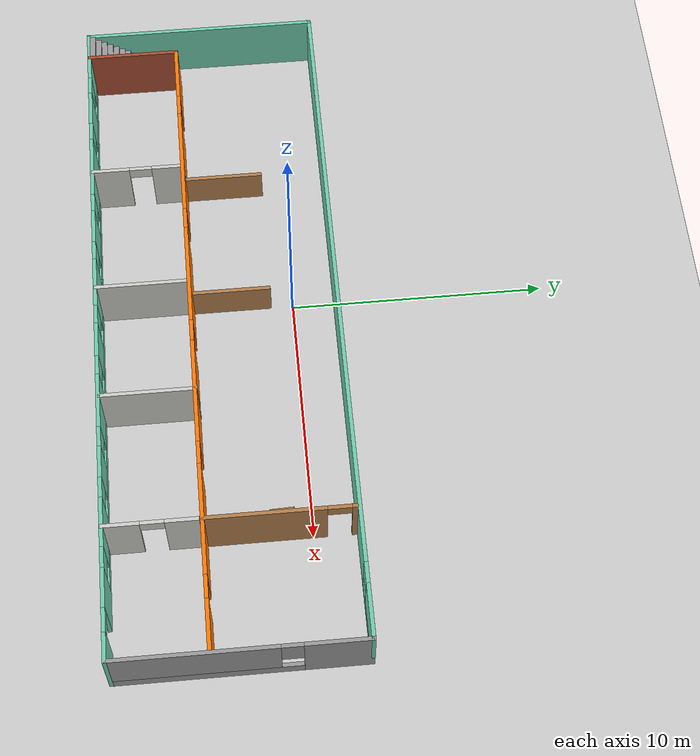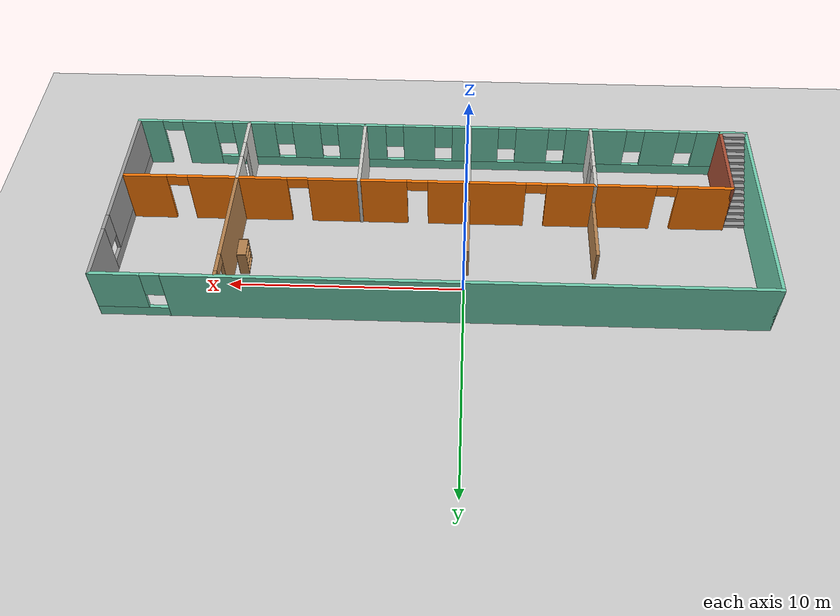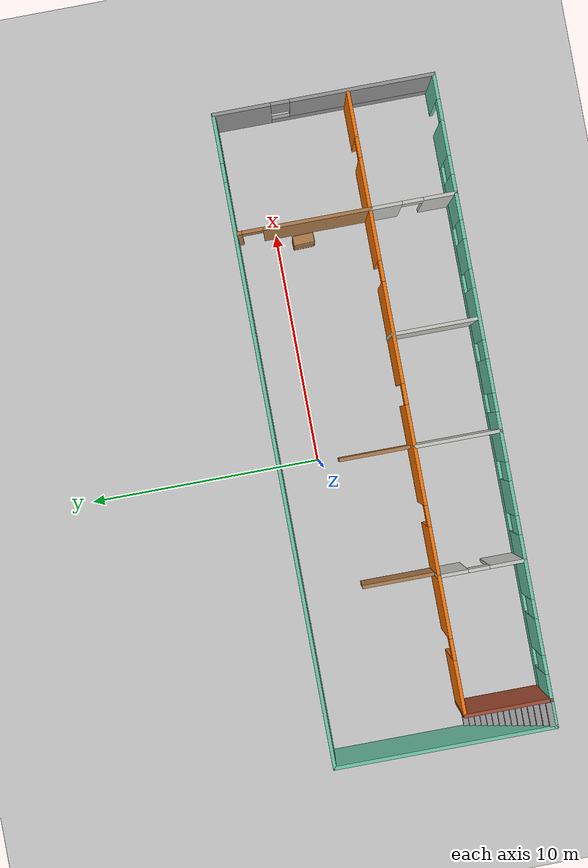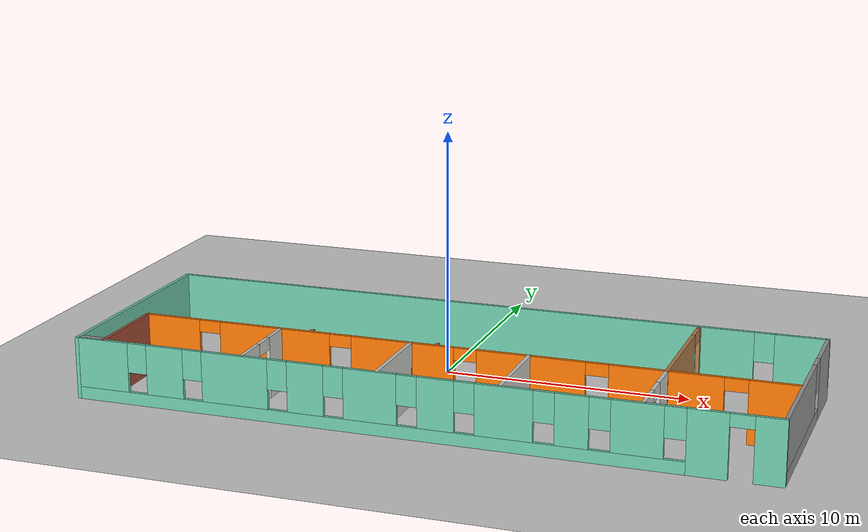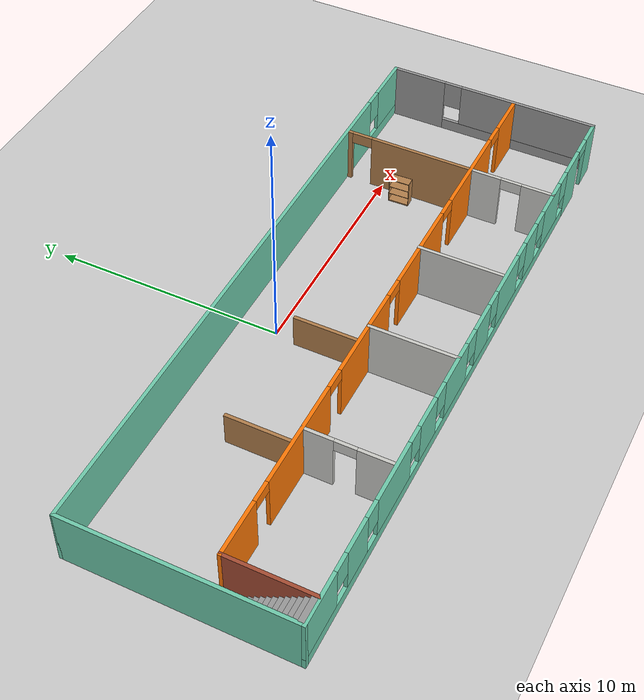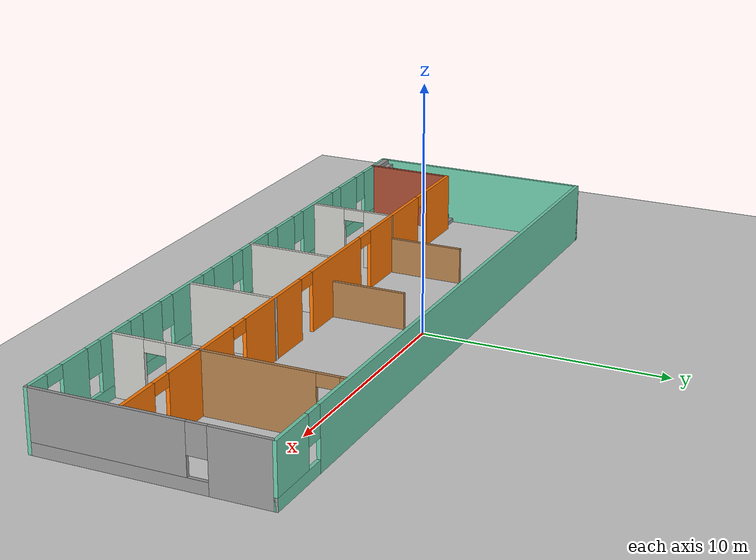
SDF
<sdf version="1.6">
 <world name="default">
  <model name="ground_plane">
   <static>1</static>
   <link name="link">
    <collision name="collision">
     <geometry><plane><normal>0 0 1</normal><size>100 100</size></plane></geometry>
     <surface>
      <contact><collide_bitmask>65535</collide_bitmask></contact>
      <friction><ode><mu>100</mu><mu2>50</mu2></ode></friction>
     </surface>
    </collision>
    <visual name="visual">
     <cast_shadows>0</cast_shadows>
     <geometry><plane><normal>0 0 1</normal><size>100 100</size></plane></geometry>
     <material>
      <script><uri>file://media/materials/scripts/gazebo.material</uri><name>Gazebo/Grey</name></script>
     </material>
    </visual>
   </link>
  </model>
  <model name="bookshelf">
   <static>1</static>
   <link name="link">
    <inertial><mass>1</mass></inertial>
    <collision name="back">
     <pose>0 0.005 0.6 0 -0 0</pose>
     <geometry><box><size>0.9 0.01 1.2</size></box></geometry>
    </collision>
    <visual name="visual1">
     <pose>0 0.005 0.6 0 -0 0</pose>
     <geometry><box><size>0.9 0.01 1.2</size></box></geometry>
     <material>
      <script><uri>file://media/materials/scripts/gazebo.material</uri><name>Gazebo/Wood</name></script>
     </material>
    </visual>
    <collision name="left_side">
     <pose>0.45 -0.195 0.6 0 -0 0</pose>
     <geometry><box><size>0.02 0.4 1.2</size></box></geometry>
    </collision>
    <visual name="visual2">
     <pose>0.45 -0.195 0.6 0 -0 0</pose>
     <geometry><box><size>0.02 0.4 1.2</size></box></geometry>
     <material>
      <script><uri>file://media/materials/scripts/gazebo.material</uri><name>Gazebo/Wood</name></script>
     </material>
    </visual>
    <collision name="right_side">
     <pose>-0.45 -0.195 0.6 0 -0 0</pose>
     <geometry><box><size>0.02 0.4 1.2</size></box></geometry>
    </collision>
    <visual name="visual3">
     <pose>-0.45 -0.195 0.6 0 -0 0</pose>
     <geometry><box><size>0.02 0.4 1.2</size></box></geometry>
     <material>
      <script><uri>file://media/materials/scripts/gazebo.material</uri><name>Gazebo/Wood</name></script>
     </material>
    </visual>
    <collision name="bottom">
     <pose>0 -0.195 0.03 0 -0 0</pose>
     <geometry><box><size>0.88 0.4 0.06</size></box></geometry>
    </collision>
    <visual name="visual4">
     <pose>0 -0.195 0.03 0 -0 0</pose>
     <geometry><box><size>0.88 0.4 0.06</size></box></geometry>
     <material>
      <script><uri>file://media/materials/scripts/gazebo.material</uri><name>Gazebo/Wood</name></script>
     </material>
    </visual>
    <collision name="top">
     <pose>0 -0.195 1.19 0 -0 0</pose>
     <geometry><box><size>0.88 0.4 0.02</size></box></geometry>
    </collision>
    <visual name="visual5">
     <pose>0 -0.195 1.19 0 -0 0</pose>
     <geometry><box><size>0.88 0.4 0.02</size></box></geometry>
     <material>
      <script><uri>file://media/materials/scripts/gazebo.material</uri><name>Gazebo/Wood</name></script>
     </material>
    </visual>
    <collision name="low_shelf">
     <pose>0 -0.195 0.43 0 -0 0</pose>
     <geometry><box><size>0.88 0.4 0.02</size></box></geometry>
    </collision>
    <visual name="visual6">
     <pose>0 -0.195 0.43 0 -0 0</pose>
     <geometry><box><size>0.88 0.4 0.02</size></box></geometry>
     <material>
      <script><uri>file://media/materials/scripts/gazebo.material</uri><name>Gazebo/Wood</name></script>
     </material>
    </visual>
    <collision name="high_shelf">
     <pose>0 -0.195 0.8 0 -0 0</pose>
     <geometry><box><size>0.88 0.4 0.02</size></box></geometry>
    </collision>
    <visual name="visual7">
     <pose>0 -0.195 0.8 0 -0 0</pose>
     <geometry><box><size>0.88 0.4 0.02</size></box></geometry>
     <material>
      <script><uri>file://media/materials/scripts/gazebo.material</uri><name>Gazebo/Wood</name></script>
     </material>
    </visual>
   </link>
   <pose>9.64485 -1.08676 0 0 0 -1.5382</pose>
  </model>
  <model name="Room2">
   <pose>1.20997 -2.96921 0 0 -0 0</pose>
   <link name="Stairs_0">
    <visual name="Stairs_0_Visual_0">
     <pose>-13.2569 -1.25437 0.083333 0 -0 0</pose>
     <geometry><box><size>1 0.233333 0.166667</size></box></geometry>
     <material>
      <script><uri>file://media/materials/scripts/gazebo.material</uri><name>Gazebo/Grey</name></script>
      <ambient>1 1 1 1</ambient>
     </material>
     <meta><layer>0</layer></meta>
    </visual>
    <collision name="Stairs_0_Collision_0">
     <geometry><box><size>1 0.233333 0.166667</size></box></geometry>
     <pose>-13.2569 -1.25437 0.083333 0 -0 0</pose>
    </collision>
    <visual name="Stairs_0_Visual_1">
     <pose>-13.2569 -1.4877 0.25 0 -0 0</pose>
     <geometry><box><size>1 0.233333 0.166667</size></box></geometry>
     <material>
      <script><uri>file://media/materials/scripts/gazebo.material</uri><name>Gazebo/Grey</name></script>
      <ambient>1 1 1 1</ambient>
     </material>
     <meta><layer>0</layer></meta>
    </visual>
    <collision name="Stairs_0_Collision_1">
     <geometry><box><size>1 0.233333 0.166667</size></box></geometry>
     <pose>-13.2569 -1.4877 0.25 0 -0 0</pose>
    </collision>
    <visual name="Stairs_0_Visual_2">
     <pose>-13.2569 -1.72104 0.416667 0 -0 0</pose>
     <geometry><box><size>1 0.233333 0.166667</size></box></geometry>
     <material>
      <script><uri>file://media/materials/scripts/gazebo.material</uri><name>Gazebo/Grey</name></script>
      <ambient>1 1 1 1</ambient>
     </material>
     <meta><layer>0</layer></meta>
    </visual>
    <collision name="Stairs_0_Collision_2">
     <geometry><box><size>1 0.233333 0.166667</size></box></geometry>
     <pose>-13.2569 -1.72104 0.416667 0 -0 0</pose>
    </collision>
    <visual name="Stairs_0_Visual_3">
     <pose>-13.2569 -1.95437 0.583333 0 -0 0</pose>
     <geometry><box><size>1 0.233333 0.166667</size></box></geometry>
     <material>
      <script><uri>file://media/materials/scripts/gazebo.material</uri><name>Gazebo/Grey</name></script>
      <ambient>1 1 1 1</ambient>
     </material>
     <meta><layer>0</layer></meta>
    </visual>
    <collision name="Stairs_0_Collision_3">
     <geometry><box><size>1 0.233333 0.166667</size></box></geometry>
     <pose>-13.2569 -1.95437 0.583333 0 -0 0</pose>
    </collision>
    <visual name="Stairs_0_Visual_4">
     <pose>-13.2569 -2.1877 0.75 0 -0 0</pose>
     <geometry><box><size>1 0.233333 0.166667</size></box></geometry>
     <material>
      <script><uri>file://media/materials/scripts/gazebo.material</uri><name>Gazebo/Grey</name></script>
      <ambient>1 1 1 1</ambient>
     </material>
     <meta><layer>0</layer></meta>
    </visual>
    <collision name="Stairs_0_Collision_4">
     <geometry><box><size>1 0.233333 0.166667</size></box></geometry>
     <pose>-13.2569 -2.1877 0.75 0 -0 0</pose>
    </collision>
    <visual name="Stairs_0_Visual_5">
     <pose>-13.2569 -2.42104 0.916667 0 -0 0</pose>
     <geometry><box><size>1 0.233333 0.166667</size></box></geometry>
     <material>
      <script><uri>file://media/materials/scripts/gazebo.material</uri><name>Gazebo/Grey</name></script>
      <ambient>1 1 1 1</ambient>
     </material>
     <meta><layer>0</layer></meta>
    </visual>
    <collision name="Stairs_0_Collision_5">
     <geometry><box><size>1 0.233333 0.166667</size></box></geometry>
     <pose>-13.2569 -2.42104 0.916667 0 -0 0</pose>
    </collision>
    <visual name="Stairs_0_Visual_6">
     <pose>-13.2569 -2.65437 1.08333 0 -0 0</pose>
     <geometry><box><size>1 0.233333 0.166667</size></box></geometry>
     <material>
      <script><uri>file://media/materials/scripts/gazebo.material</uri><name>Gazebo/Grey</name></script>
      <ambient>1 1 1 1</ambient>
     </material>
     <meta><layer>0</layer></meta>
    </visual>
    <collision name="Stairs_0_Collision_6">
     <geometry><box><size>1 0.233333 0.166667</size></box></geometry>
     <pose>-13.2569 -2.65437 1.08333 0 -0 0</pose>
    </collision>
    <visual name="Stairs_0_Visual_7">
     <pose>-13.2569 -2.8877 1.25 0 -0 0</pose>
     <geometry><box><size>1 0.233333 0.166667</size></box></geometry>
     <material>
      <script><uri>file://media/materials/scripts/gazebo.material</uri><name>Gazebo/Grey</name></script>
      <ambient>1 1 1 1</ambient>
     </material>
     <meta><layer>0</layer></meta>
    </visual>
    <collision name="Stairs_0_Collision_7">
     <geometry><box><size>1 0.233333 0.166667</size></box></geometry>
     <pose>-13.2569 -2.8877 1.25 0 -0 0</pose>
    </collision>
    <visual name="Stairs_0_Visual_8">
     <pose>-13.2569 -3.12104 1.41667 0 -0 0</pose>
     <geometry><box><size>1 0.233333 0.166667</size></box></geometry>
     <material>
      <script><uri>file://media/materials/scripts/gazebo.material</uri><name>Gazebo/Grey</name></script>
      <ambient>1 1 1 1</ambient>
     </material>
     <meta><layer>0</layer></meta>
    </visual>
    <collision name="Stairs_0_Collision_8">
     <geometry><box><size>1 0.233333 0.166667</size></box></geometry>
     <pose>-13.2569 -3.12104 1.41667 0 -0 0</pose>
    </collision>
    <visual name="Stairs_0_Visual_9">
     <pose>-13.2569 -3.35437 1.58333 0 -0 0</pose>
     <geometry><box><size>1 0.233333 0.166667</size></box></geometry>
     <material>
      <script><uri>file://media/materials/scripts/gazebo.material</uri><name>Gazebo/Grey</name></script>
      <ambient>1 1 1 1</ambient>
     </material>
     <meta><layer>0</layer></meta>
    </visual>
    <collision name="Stairs_0_Collision_9">
     <geometry><box><size>1 0.233333 0.166667</size></box></geometry>
     <pose>-13.2569 -3.35437 1.58333 0 -0 0</pose>
    </collision>
    <visual name="Stairs_0_Visual_10">
     <pose>-13.2569 -3.5877 1.75 0 -0 0</pose>
     <geometry><box><size>1 0.233333 0.166667</size></box></geometry>
     <material>
      <script><uri>file://media/materials/scripts/gazebo.material</uri><name>Gazebo/Grey</name></script>
      <ambient>1 1 1 1</ambient>
     </material>
     <meta><layer>0</layer></meta>
    </visual>
    <collision name="Stairs_0_Collision_10">
     <geometry><box><size>1 0.233333 0.166667</size></box></geometry>
     <pose>-13.2569 -3.5877 1.75 0 -0 0</pose>
    </collision>
    <visual name="Stairs_0_Visual_11">
     <pose>-13.2569 -3.82104 1.91667 0 -0 0</pose>
     <geometry><box><size>1 0.233333 0.166667</size></box></geometry>
     <material>
      <script><uri>file://media/materials/scripts/gazebo.material</uri><name>Gazebo/Grey</name></script>
      <ambient>1 1 1 1</ambient>
     </material>
     <meta><layer>0</layer></meta>
    </visual>
    <collision name="Stairs_0_Collision_11">
     <geometry><box><size>1 0.233333 0.166667</size></box></geometry>
     <pose>-13.2569 -3.82104 1.91667 0 -0 0</pose>
    </collision>
    <visual name="Stairs_0_Visual_12">
     <pose>-13.2569 -4.05437 2.08333 0 -0 0</pose>
     <geometry><box><size>1 0.233333 0.166667</size></box></geometry>
     <material>
      <script><uri>file://media/materials/scripts/gazebo.material</uri><name>Gazebo/Grey</name></script>
      <ambient>1 1 1 1</ambient>
     </material>
     <meta><layer>0</layer></meta>
    </visual>
    <collision name="Stairs_0_Collision_12">
     <geometry><box><size>1 0.233333 0.166667</size></box></geometry>
     <pose>-13.2569 -4.05437 2.08333 0 -0 0</pose>
    </collision>
    <visual name="Stairs_0_Visual_13">
     <pose>-13.2569 -4.2877 2.25 0 -0 0</pose>
     <geometry><box><size>1 0.233333 0.166667</size></box></geometry>
     <material>
      <script><uri>file://media/materials/scripts/gazebo.material</uri><name>Gazebo/Grey</name></script>
      <ambient>1 1 1 1</ambient>
     </material>
     <meta><layer>0</layer></meta>
    </visual>
    <collision name="Stairs_0_Collision_13">
     <geometry><box><size>1 0.233333 0.166667</size></box></geometry>
     <pose>-13.2569 -4.2877 2.25 0 -0 0</pose>
    </collision>
    <visual name="Stairs_0_Visual_14">
     <pose>-13.2569 -4.52104 2.41667 0 -0 0</pose>
     <geometry><box><size>1 0.233333 0.166667</size></box></geometry>
     <material>
      <script><uri>file://media/materials/scripts/gazebo.material</uri><name>Gazebo/Grey</name></script>
      <ambient>1 1 1 1</ambient>
     </material>
     <meta><layer>0</layer></meta>
    </visual>
    <collision name="Stairs_0_Collision_14">
     <geometry><box><size>1 0.233333 0.166667</size></box></geometry>
     <pose>-13.2569 -4.52104 2.41667 0 -0 0</pose>
    </collision>
   </link>
   <link name="Wall_1">
    <pose>0 4.675 0 0 -0 0</pose>
    <visual name="Wall_1_Visual_0">
     <pose>-1.46652 0 1.25 0 -0 0</pose>
     <geometry><box><size>24.817 0.15 2.5</size></box></geometry>
     <material>
      <script><uri>file://media/materials/scripts/gazebo.material</uri><name>Gazebo/Grey</name></script>
      <ambient>0.435294 0.796078 0.67451 1</ambient>
     </material>
     <meta><layer>0</layer></meta>
    </visual>
    <collision name="Wall_1_Collision_0">
     <geometry><box><size>24.817 0.15 2.5</size></box></geometry>
     <pose>-1.46652 0 1.25 0 -0 0</pose>
    </collision>
    <visual name="Wall_1_Visual_1">
     <pose>12.4085 0 0.25 0 -0 0</pose>
     <geometry><box><size>2.93303 0.15 0.5</size></box></geometry>
     <material>
      <script><uri>file://media/materials/scripts/gazebo.material</uri><name>Gazebo/Grey</name></script>
      <ambient>0.435294 0.796078 0.67451 1</ambient>
     </material>
     <meta><layer>0</layer></meta>
    </visual>
    <collision name="Wall_1_Collision_1">
     <geometry><box><size>2.93303 0.15 0.5</size></box></geometry>
     <pose>12.4085 0 0.25 0 -0 0</pose>
    </collision>
    <visual name="Wall_1_Visual_2">
     <pose>12.8085 0 1.5 0 -0 0</pose>
     <geometry><box><size>2.13304 0.15 2</size></box></geometry>
     <material>
      <script><uri>file://media/materials/scripts/gazebo.material</uri><name>Gazebo/Grey</name></script>
      <ambient>0.435294 0.796078 0.67451 1</ambient>
     </material>
     <meta><layer>0</layer></meta>
    </visual>
    <collision name="Wall_1_Collision_2">
     <geometry><box><size>2.13304 0.15 2</size></box></geometry>
     <pose>12.8085 0 1.5 0 -0 0</pose>
    </collision>
    <visual name="Wall_1_Visual_3">
     <pose>11.342 0 1.9 0 -0 0</pose>
     <geometry><box><size>0.8 0.15 1.2</size></box></geometry>
     <material>
      <script><uri>file://media/materials/scripts/gazebo.material</uri><name>Gazebo/Grey</name></script>
      <ambient>0.435294 0.796078 0.67451 1</ambient>
     </material>
     <meta><layer>0</layer></meta>
    </visual>
    <collision name="Wall_1_Collision_3">
     <geometry><box><size>0.8 0.15 1.2</size></box></geometry>
     <pose>11.342 0 1.9 0 -0 0</pose>
    </collision>
   </link>
   <link name="Wall_14">
    <pose>-6.80029 -2.83718 0 0 0 -1.5709</pose>
    <visual name="Wall_14_Visual_0">
     <pose>-1.21773 0 1.25 0 -0 0</pose>
     <geometry><box><size>1.31454 0.15 2.5</size></box></geometry>
     <material>
      <script><uri>file://media/materials/scripts/gazebo.material</uri><name>Gazebo/CeilingTiled</name></script>
      <ambient>1 1 1 1</ambient>
     </material>
     <meta><layer>0</layer></meta>
    </visual>
    <collision name="Wall_14_Collision_0">
     <geometry><box><size>1.31454 0.15 2.5</size></box></geometry>
     <pose>-1.21773 0 1.25 0 -0 0</pose>
    </collision>
    <visual name="Wall_14_Visual_1">
     <pose>1.10727 0 1.25 0 -0 0</pose>
     <geometry><box><size>1.53546 0.15 2.5</size></box></geometry>
     <material>
      <script><uri>file://media/materials/scripts/gazebo.material</uri><name>Gazebo/CeilingTiled</name></script>
      <ambient>1 1 1 1</ambient>
     </material>
     <meta><layer>0</layer></meta>
    </visual>
    <collision name="Wall_14_Collision_1">
     <geometry><box><size>1.53546 0.15 2.5</size></box></geometry>
     <pose>1.10727 0 1.25 0 -0 0</pose>
    </collision>
    <visual name="Wall_14_Visual_2">
     <pose>-0.110464 0 2.25 0 -0 0</pose>
     <geometry><box><size>0.9 0.15 0.5</size></box></geometry>
     <material>
      <script><uri>file://media/materials/scripts/gazebo.material</uri><name>Gazebo/CeilingTiled</name></script>
      <ambient>1 1 1 1</ambient>
     </material>
     <meta><layer>0</layer></meta>
    </visual>
    <collision name="Wall_14_Collision_2">
     <geometry><box><size>0.9 0.15 0.5</size></box></geometry>
     <pose>-0.110464 0 2.25 0 -0 0</pose>
    </collision>
   </link>
   <link name="Wall_16">
    <collision name="Wall_16_Collision">
     <geometry><box><size>3.75 0.15 2.5</size></box></geometry>
     <pose>0 0 1.25 0 -0 0</pose>
    </collision>
    <visual name="Wall_16_Visual">
     <pose>0 0 1.25 0 -0 0</pose>
     <geometry><box><size>3.75 0.15 2.5</size></box></geometry>
     <material>
      <script><uri>file://media/materials/scripts/gazebo.material</uri><name>Gazebo/CeilingTiled</name></script>
      <ambient>1 1 1 1</ambient>
     </material>
     <meta><layer>0</layer></meta>
    </visual>
    <pose>-1.32935 -2.85724 0 0 0 -1.57093</pose>
   </link>
   <link name="Wall_2">
    <pose>13.8 0 0 0 0 -1.5708</pose>
    <visual name="Wall_2_Visual_0">
     <pose>-3.49449 0 1.25 0 -0 0</pose>
     <geometry><box><size>2.51101 0.15 2.5</size></box></geometry>
     <material>
      <script><uri>file://media/materials/scripts/gazebo.material</uri><name>Gazebo/Grey</name></script>
      <ambient>1 1 1 1</ambient>
     </material>
     <meta><layer>0</layer></meta>
    </visual>
    <collision name="Wall_2_Collision_0">
     <geometry><box><size>2.51101 0.15 2.5</size></box></geometry>
     <pose>-3.49449 0 1.25 0 -0 0</pose>
    </collision>
    <visual name="Wall_2_Visual_1">
     <pose>1.25551 0 0.25 0 -0 0</pose>
     <geometry><box><size>6.98899 0.15 0.5</size></box></geometry>
     <material>
      <script><uri>file://media/materials/scripts/gazebo.material</uri><name>Gazebo/Grey</name></script>
      <ambient>1 1 1 1</ambient>
     </material>
     <meta><layer>0</layer></meta>
    </visual>
    <collision name="Wall_2_Collision_1">
     <geometry><box><size>6.98899 0.15 0.5</size></box></geometry>
     <pose>1.25551 0 0.25 0 -0 0</pose>
    </collision>
    <visual name="Wall_2_Visual_2">
     <pose>1.65551 0 1.5 0 -0 0</pose>
     <geometry><box><size>6.18899 0.15 2</size></box></geometry>
     <material>
      <script><uri>file://media/materials/scripts/gazebo.material</uri><name>Gazebo/Grey</name></script>
      <ambient>1 1 1 1</ambient>
     </material>
     <meta><layer>0</layer></meta>
    </visual>
    <collision name="Wall_2_Collision_2">
     <geometry><box><size>6.18899 0.15 2</size></box></geometry>
     <pose>1.65551 0 1.5 0 -0 0</pose>
    </collision>
    <visual name="Wall_2_Visual_3">
     <pose>-1.83899 0 1.9 0 -0 0</pose>
     <geometry><box><size>0.8 0.15 1.2</size></box></geometry>
     <material>
      <script><uri>file://media/materials/scripts/gazebo.material</uri><name>Gazebo/Grey</name></script>
      <ambient>1 1 1 1</ambient>
     </material>
     <meta><layer>0</layer></meta>
    </visual>
    <collision name="Wall_2_Collision_3">
     <geometry><box><size>0.8 0.15 1.2</size></box></geometry>
     <pose>-1.83899 0 1.9 0 -0 0</pose>
    </collision>
   </link>
   <link name="Wall_20">
    <collision name="Wall_20_Collision">
     <geometry><box><size>3.75 0.15 2.5</size></box></geometry>
     <pose>0 0 1.25 0 -0 0</pose>
    </collision>
    <visual name="Wall_20_Visual">
     <pose>0 0 1.25 0 -0 0</pose>
     <geometry><box><size>3.75 0.15 2.5</size></box></geometry>
     <material>
      <script><uri>file://media/materials/scripts/gazebo.material</uri><name>Gazebo/CeilingTiled</name></script>
      <ambient>1 1 1 1</ambient>
     </material>
     <meta><layer>0</layer></meta>
    </visual>
    <pose>3.43733 -2.81714 0 0 0 -1.5708</pose>
   </link>
   <link name="Wall_22">
    <pose>8.74731 -2.85737 0 0 0 -1.5708</pose>
    <visual name="Wall_22_Visual_0">
     <pose>-1.16745 0 1.25 0 -0 0</pose>
     <geometry><box><size>1.41511 0.15 2.5</size></box></geometry>
     <material>
      <script><uri>file://media/materials/scripts/gazebo.material</uri><name>Gazebo/CeilingTiled</name></script>
      <ambient>1 1 1 1</ambient>
     </material>
     <meta><layer>0</layer></meta>
    </visual>
    <collision name="Wall_22_Collision_0">
     <geometry><box><size>1.41511 0.15 2.5</size></box></geometry>
     <pose>-1.16745 0 1.25 0 -0 0</pose>
    </collision>
    <visual name="Wall_22_Visual_1">
     <pose>1.15755 0 1.25 0 -0 0</pose>
     <geometry><box><size>1.43489 0.15 2.5</size></box></geometry>
     <material>
      <script><uri>file://media/materials/scripts/gazebo.material</uri><name>Gazebo/CeilingTiled</name></script>
      <ambient>1 1 1 1</ambient>
     </material>
     <meta><layer>0</layer></meta>
    </visual>
    <collision name="Wall_22_Collision_1">
     <geometry><box><size>1.43489 0.15 2.5</size></box></geometry>
     <pose>1.15755 0 1.25 0 -0 0</pose>
    </collision>
    <visual name="Wall_22_Visual_2">
     <pose>-0.009892 0 2.25 0 -0 0</pose>
     <geometry><box><size>0.9 0.15 0.5</size></box></geometry>
     <material>
      <script><uri>file://media/materials/scripts/gazebo.material</uri><name>Gazebo/CeilingTiled</name></script>
      <ambient>1 1 1 1</ambient>
     </material>
     <meta><layer>0</layer></meta>
    </visual>
    <collision name="Wall_22_Collision_2">
     <geometry><box><size>0.9 0.15 0.5</size></box></geometry>
     <pose>-0.009892 0 2.25 0 -0 0</pose>
    </collision>
   </link>
   <link name="Wall_24">
    <pose>8.74731 1.74263 0 0 -0 1.5708</pose>
    <visual name="Wall_24_Visual_0">
     <pose>-0.55836 0 1.25 0 -0 0</pose>
     <geometry><box><size>4.63328 0.15 2.5</size></box></geometry>
     <material>
      <script><uri>file://media/materials/scripts/gazebo.material</uri><name>Gazebo/Wood</name></script>
      <ambient>1 1 1 1</ambient>
     </material>
     <meta><layer>0</layer></meta>
    </visual>
    <collision name="Wall_24_Collision_0">
     <geometry><box><size>4.63328 0.15 2.5</size></box></geometry>
     <pose>-0.55836 0 1.25 0 -0 0</pose>
    </collision>
    <visual name="Wall_24_Visual_1">
     <pose>2.76664 0 1.25 0 -0 0</pose>
     <geometry><box><size>0.216721 0.15 2.5</size></box></geometry>
     <material>
      <script><uri>file://media/materials/scripts/gazebo.material</uri><name>Gazebo/Wood</name></script>
      <ambient>1 1 1 1</ambient>
     </material>
     <meta><layer>0</layer></meta>
    </visual>
    <collision name="Wall_24_Collision_1">
     <geometry><box><size>0.216721 0.15 2.5</size></box></geometry>
     <pose>2.76664 0 1.25 0 -0 0</pose>
    </collision>
    <visual name="Wall_24_Visual_2">
     <pose>2.20828 0 2.25 0 -0 0</pose>
     <geometry><box><size>0.9 0.15 0.5</size></box></geometry>
     <material>
      <script><uri>file://media/materials/scripts/gazebo.material</uri><name>Gazebo/Wood</name></script>
      <ambient>1 1 1 1</ambient>
     </material>
     <meta><layer>0</layer></meta>
    </visual>
    <collision name="Wall_24_Collision_2">
     <geometry><box><size>0.9 0.15 0.5</size></box></geometry>
     <pose>2.20828 0 2.25 0 -0 0</pose>
    </collision>
   </link>
   <link name="Wall_26">
    <collision name="Wall_26_Collision">
     <geometry><box><size>3.25 0.15 1.5</size></box></geometry>
     <pose>0 0 0.75 0 -0 0</pose>
    </collision>
    <visual name="Wall_26_Visual">
     <pose>0 0 0.75 0 -0 0</pose>
     <geometry><box><size>3.25 0.15 1.5</size></box></geometry>
     <material>
      <script><uri>file://media/materials/scripts/gazebo.material</uri><name>Gazebo/Wood</name></script>
      <ambient>1 1 1 1</ambient>
     </material>
     <meta><layer>0</layer></meta>
    </visual>
    <pose>-1.32911 0.492887 0 0 -0 1.5708</pose>
   </link>
   <link name="Wall_28">
    <collision name="Wall_28_Collision">
     <geometry><box><size>3.25 0.15 1.5</size></box></geometry>
     <pose>0 0 0.75 0 -0 0</pose>
    </collision>
    <visual name="Wall_28_Visual">
     <pose>0 0 0.75 0 -0 0</pose>
     <geometry><box><size>3.25 0.15 1.5</size></box></geometry>
     <material>
      <script><uri>file://media/materials/scripts/gazebo.material</uri><name>Gazebo/Wood</name></script>
      <ambient>1 1 1 1</ambient>
     </material>
     <meta><layer>0</layer></meta>
    </visual>
    <pose>-6.80011 0.512887 0 0 -0 1.5708</pose>
   </link>
   <link name="Wall_3">
    <pose>0 -4.675 0 0 -0 3.14159</pose>
    <visual name="Wall_3_Visual_0">
     <pose>-13.3062 0 1.25 0 -0 0</pose>
     <geometry><box><size>1.1377 0.15 2.5</size></box></geometry>
     <material>
      <script><uri>file://media/materials/scripts/gazebo.material</uri><name>Gazebo/Grey</name></script>
      <ambient>0.435294 0.796078 0.67451 1</ambient>
     </material>
     <meta><layer>0</layer></meta>
    </visual>
    <collision name="Wall_3_Collision_0">
     <geometry><box><size>1.1377 0.15 2.5</size></box></geometry>
     <pose>-13.3062 0 1.25 0 -0 0</pose>
    </collision>
    <visual name="Wall_3_Visual_1">
     <pose>-11.0857 0 1.25 0 -0 0</pose>
     <geometry><box><size>1.50329 0.15 2.5</size></box></geometry>
     <material>
      <script><uri>file://media/materials/scripts/gazebo.material</uri><name>Gazebo/Grey</name></script>
      <ambient>0.435294 0.796078 0.67451 1</ambient>
     </material>
     <meta><layer>0</layer></meta>
    </visual>
    <collision name="Wall_3_Collision_1">
     <geometry><box><size>1.50329 0.15 2.5</size></box></geometry>
     <pose>-11.0857 0 1.25 0 -0 0</pose>
    </collision>
    <visual name="Wall_3_Visual_2">
     <pose>1.77049 0 0.25 0 -0 0</pose>
     <geometry><box><size>24.209 0.15 0.5</size></box></geometry>
     <material>
      <script><uri>file://media/materials/scripts/gazebo.material</uri><name>Gazebo/Grey</name></script>
      <ambient>0.435294 0.796078 0.67451 1</ambient>
     </material>
     <meta><layer>0</layer></meta>
    </visual>
    <collision name="Wall_3_Collision_2">
     <geometry><box><size>24.209 0.15 0.5</size></box></geometry>
     <pose>1.77049 0 0.25 0 -0 0</pose>
    </collision>
    <visual name="Wall_3_Visual_3">
     <pose>-8.56629 0 1.5 0 -0 0</pose>
     <geometry><box><size>1.93545 0.15 2</size></box></geometry>
     <material>
      <script><uri>file://media/materials/scripts/gazebo.material</uri><name>Gazebo/Grey</name></script>
      <ambient>0.435294 0.796078 0.67451 1</ambient>
     </material>
     <meta><layer>0</layer></meta>
    </visual>
    <collision name="Wall_3_Collision_3">
     <geometry><box><size>1.93545 0.15 2</size></box></geometry>
     <pose>-8.56629 0 1.5 0 -0 0</pose>
    </collision>
    <visual name="Wall_3_Visual_4">
     <pose>-6.16272 0 1.5 0 -0 0</pose>
     <geometry><box><size>1.2717 0.15 2</size></box></geometry>
     <material>
      <script><uri>file://media/materials/scripts/gazebo.material</uri><name>Gazebo/Grey</name></script>
      <ambient>0.435294 0.796078 0.67451 1</ambient>
     </material>
     <meta><layer>0</layer></meta>
    </visual>
    <collision name="Wall_3_Collision_4">
     <geometry><box><size>1.2717 0.15 2</size></box></geometry>
     <pose>-6.16272 0 1.5 0 -0 0</pose>
    </collision>
    <visual name="Wall_3_Visual_5">
     <pose>-3.61835 0 1.5 0 -0 0</pose>
     <geometry><box><size>2.21704 0.15 2</size></box></geometry>
     <material>
      <script><uri>file://media/materials/scripts/gazebo.material</uri><name>Gazebo/Grey</name></script>
      <ambient>0.435294 0.796078 0.67451 1</ambient>
     </material>
     <meta><layer>0</layer></meta>
    </visual>
    <collision name="Wall_3_Collision_5">
     <geometry><box><size>2.21704 0.15 2</size></box></geometry>
     <pose>-3.61835 0 1.5 0 -0 0</pose>
    </collision>
    <visual name="Wall_3_Visual_6">
     <pose>-0.993532 0 1.5 0 -0 0</pose>
     <geometry><box><size>1.43261 0.15 2</size></box></geometry>
     <material>
      <script><uri>file://media/materials/scripts/gazebo.material</uri><name>Gazebo/Grey</name></script>
      <ambient>0.435294 0.796078 0.67451 1</ambient>
     </material>
     <meta><layer>0</layer></meta>
    </visual>
    <collision name="Wall_3_Collision_6">
     <geometry><box><size>1.43261 0.15 2</size></box></geometry>
     <pose>-0.993532 0 1.5 0 -0 0</pose>
    </collision>
    <visual name="Wall_3_Visual_7">
     <pose>1.581 0 1.5 0 -0 0</pose>
     <geometry><box><size>2.11647 0.15 2</size></box></geometry>
     <material>
      <script><uri>file://media/materials/scripts/gazebo.material</uri><name>Gazebo/Grey</name></script>
      <ambient>0.435294 0.796078 0.67451 1</ambient>
     </material>
     <meta><layer>0</layer></meta>
    </visual>
    <collision name="Wall_3_Collision_7">
     <geometry><box><size>2.11647 0.15 2</size></box></geometry>
     <pose>1.581 0 1.5 0 -0 0</pose>
    </collision>
    <visual name="Wall_3_Visual_8">
     <pose>4.17566 0 1.5 0 -0 0</pose>
     <geometry><box><size>1.47283 0.15 2</size></box></geometry>
     <material>
      <script><uri>file://media/materials/scripts/gazebo.material</uri><name>Gazebo/Grey</name></script>
      <ambient>0.435294 0.796078 0.67451 1</ambient>
     </material>
     <meta><layer>0</layer></meta>
    </visual>
    <collision name="Wall_3_Collision_8">
     <geometry><box><size>1.47283 0.15 2</size></box></geometry>
     <pose>4.17566 0 1.5 0 -0 0</pose>
    </collision>
    <visual name="Wall_3_Visual_9">
     <pose>7.08207 0 1.5 0 -0 0</pose>
     <geometry><box><size>2.73999 0.15 2</size></box></geometry>
     <material>
      <script><uri>file://media/materials/scripts/gazebo.material</uri><name>Gazebo/Grey</name></script>
      <ambient>0.435294 0.796078 0.67451 1</ambient>
     </material>
     <meta><layer>0</layer></meta>
    </visual>
    <collision name="Wall_3_Collision_9">
     <geometry><box><size>2.73999 0.15 2</size></box></geometry>
     <pose>7.08207 0 1.5 0 -0 0</pose>
    </collision>
    <visual name="Wall_3_Visual_10">
     <pose>10.0287 0 1.5 0 -0 0</pose>
     <geometry><box><size>1.55329 0.15 2</size></box></geometry>
     <material>
      <script><uri>file://media/materials/scripts/gazebo.material</uri><name>Gazebo/Grey</name></script>
      <ambient>0.435294 0.796078 0.67451 1</ambient>
     </material>
     <meta><layer>0</layer></meta>
    </visual>
    <collision name="Wall_3_Collision_10">
     <geometry><box><size>1.55329 0.15 2</size></box></geometry>
     <pose>10.0287 0 1.5 0 -0 0</pose>
    </collision>
    <visual name="Wall_3_Visual_11">
     <pose>12.7402 0 1.5 0 -0 0</pose>
     <geometry><box><size>2.26965 0.15 2</size></box></geometry>
     <material>
      <script><uri>file://media/materials/scripts/gazebo.material</uri><name>Gazebo/Grey</name></script>
      <ambient>0.435294 0.796078 0.67451 1</ambient>
     </material>
     <meta><layer>0</layer></meta>
    </visual>
    <collision name="Wall_3_Collision_11">
     <geometry><box><size>2.26965 0.15 2</size></box></geometry>
     <pose>12.7402 0 1.5 0 -0 0</pose>
    </collision>
    <visual name="Wall_3_Visual_12">
     <pose>-9.93402 0 1.9 0 -0 0</pose>
     <geometry><box><size>0.8 0.15 1.2</size></box></geometry>
     <material>
      <script><uri>file://media/materials/scripts/gazebo.material</uri><name>Gazebo/Grey</name></script>
      <ambient>0.435294 0.796078 0.67451 1</ambient>
     </material>
     <meta><layer>0</layer></meta>
    </visual>
    <collision name="Wall_3_Collision_12">
     <geometry><box><size>0.8 0.15 1.2</size></box></geometry>
     <pose>-9.93402 0 1.9 0 -0 0</pose>
    </collision>
    <visual name="Wall_3_Visual_13">
     <pose>-7.19857 0 1.9 0 -0 0</pose>
     <geometry><box><size>0.8 0.15 1.2</size></box></geometry>
     <material>
      <script><uri>file://media/materials/scripts/gazebo.material</uri><name>Gazebo/Grey</name></script>
      <ambient>0.435294 0.796078 0.67451 1</ambient>
     </material>
     <meta><layer>0</layer></meta>
    </visual>
    <collision name="Wall_3_Collision_13">
     <geometry><box><size>0.8 0.15 1.2</size></box></geometry>
     <pose>-7.19857 0 1.9 0 -0 0</pose>
    </collision>
    <visual name="Wall_3_Visual_14">
     <pose>-5.12687 0 1.9 0 -0 0</pose>
     <geometry><box><size>0.8 0.15 1.2</size></box></geometry>
     <material>
      <script><uri>file://media/materials/scripts/gazebo.material</uri><name>Gazebo/Grey</name></script>
      <ambient>0.435294 0.796078 0.67451 1</ambient>
     </material>
     <meta><layer>0</layer></meta>
    </visual>
    <collision name="Wall_3_Collision_14">
     <geometry><box><size>0.8 0.15 1.2</size></box></geometry>
     <pose>-5.12687 0 1.9 0 -0 0</pose>
    </collision>
    <visual name="Wall_3_Visual_15">
     <pose>-2.10983 0 1.9 0 -0 0</pose>
     <geometry><box><size>0.8 0.15 1.2</size></box></geometry>
     <material>
      <script><uri>file://media/materials/scripts/gazebo.material</uri><name>Gazebo/Grey</name></script>
      <ambient>0.435294 0.796078 0.67451 1</ambient>
     </material>
     <meta><layer>0</layer></meta>
    </visual>
    <collision name="Wall_3_Collision_15">
     <geometry><box><size>0.8 0.15 1.2</size></box></geometry>
     <pose>-2.10983 0 1.9 0 -0 0</pose>
    </collision>
    <visual name="Wall_3_Visual_16">
     <pose>0.122771 0 1.9 0 -0 0</pose>
     <geometry><box><size>0.8 0.15 1.2</size></box></geometry>
     <material>
      <script><uri>file://media/materials/scripts/gazebo.material</uri><name>Gazebo/Grey</name></script>
      <ambient>0.435294 0.796078 0.67451 1</ambient>
     </material>
     <meta><layer>0</layer></meta>
    </visual>
    <collision name="Wall_3_Collision_16">
     <geometry><box><size>0.8 0.15 1.2</size></box></geometry>
     <pose>0.122771 0 1.9 0 -0 0</pose>
    </collision>
    <visual name="Wall_3_Visual_17">
     <pose>3.03924 0 1.9 0 -0 0</pose>
     <geometry><box><size>0.8 0.15 1.2</size></box></geometry>
     <material>
      <script><uri>file://media/materials/scripts/gazebo.material</uri><name>Gazebo/Grey</name></script>
      <ambient>0.435294 0.796078 0.67451 1</ambient>
     </material>
     <meta><layer>0</layer></meta>
    </visual>
    <collision name="Wall_3_Collision_17">
     <geometry><box><size>0.8 0.15 1.2</size></box></geometry>
     <pose>3.03924 0 1.9 0 -0 0</pose>
    </collision>
    <visual name="Wall_3_Visual_18">
     <pose>5.31207 0 1.9 0 -0 0</pose>
     <geometry><box><size>0.8 0.15 1.2</size></box></geometry>
     <material>
      <script><uri>file://media/materials/scripts/gazebo.material</uri><name>Gazebo/Grey</name></script>
      <ambient>0.435294 0.796078 0.67451 1</ambient>
     </material>
     <meta><layer>0</layer></meta>
    </visual>
    <collision name="Wall_3_Collision_18">
     <geometry><box><size>0.8 0.15 1.2</size></box></geometry>
     <pose>5.31207 0 1.9 0 -0 0</pose>
    </collision>
    <visual name="Wall_3_Visual_19">
     <pose>8.85206 0 1.9 0 -0 0</pose>
     <geometry><box><size>0.8 0.15 1.2</size></box></geometry>
     <material>
      <script><uri>file://media/materials/scripts/gazebo.material</uri><name>Gazebo/Grey</name></script>
      <ambient>0.435294 0.796078 0.67451 1</ambient>
     </material>
     <meta><layer>0</layer></meta>
    </visual>
    <collision name="Wall_3_Collision_19">
     <geometry><box><size>0.8 0.15 1.2</size></box></geometry>
     <pose>8.85206 0 1.9 0 -0 0</pose>
    </collision>
    <visual name="Wall_3_Visual_20">
     <pose>11.2053 0 1.9 0 -0 0</pose>
     <geometry><box><size>0.8 0.15 1.2</size></box></geometry>
     <material>
      <script><uri>file://media/materials/scripts/gazebo.material</uri><name>Gazebo/Grey</name></script>
      <ambient>0.435294 0.796078 0.67451 1</ambient>
     </material>
     <meta><layer>0</layer></meta>
    </visual>
    <collision name="Wall_3_Collision_20">
     <geometry><box><size>0.8 0.15 1.2</size></box></geometry>
     <pose>11.2053 0 1.9 0 -0 0</pose>
    </collision>
    <visual name="Wall_3_Visual_21">
     <pose>-12.2873 0 2.25 0 -0 0</pose>
     <geometry><box><size>0.9 0.15 0.5</size></box></geometry>
     <material>
      <script><uri>file://media/materials/scripts/gazebo.material</uri><name>Gazebo/Grey</name></script>
      <ambient>0.435294 0.796078 0.67451 1</ambient>
     </material>
     <meta><layer>0</layer></meta>
    </visual>
    <collision name="Wall_3_Collision_21">
     <geometry><box><size>0.9 0.15 0.5</size></box></geometry>
     <pose>-12.2873 0 2.25 0 -0 0</pose>
    </collision>
   </link>
   <link name="Wall_4">
    <collision name="Wall_4_Collision">
     <geometry><box><size>9.5 0.15 2.5</size></box></geometry>
     <pose>0 0 1.25 0 -0 0</pose>
    </collision>
    <visual name="Wall_4_Visual">
     <pose>0 0 1.25 0 -0 0</pose>
     <geometry><box><size>9.5 0.15 2.5</size></box></geometry>
     <material>
      <script><uri>file://media/materials/scripts/gazebo.material</uri><name>Gazebo/Grey</name></script>
      <ambient>0.435294 0.796078 0.67451 1</ambient>
     </material>
     <meta><layer>0</layer></meta>
    </visual>
    <pose>-13.8 0 0 0 -0 1.5708</pose>
   </link>
   <link name="Wall_6">
    <collision name="Wall_6_Collision">
     <geometry><box><size>3.75 0.15 2.5</size></box></geometry>
     <pose>0 0 1.25 0 -0 0</pose>
    </collision>
    <visual name="Wall_6_Visual">
     <pose>0 0 1.25 0 -0 0</pose>
     <geometry><box><size>3.75 0.15 2.5</size></box></geometry>
     <material>
      <script><uri>file://media/materials/scripts/gazebo.material</uri><name>Gazebo/Bricks</name></script>
      <ambient>1 1 1 1</ambient>
     </material>
     <meta><layer>0</layer></meta>
    </visual>
    <pose>-12.6736 -2.83725 0 0 0 -1.5708</pose>
   </link>
   <link name="Wall_8">
    <pose>0.50136 -1.03725 0 0 -0 0</pose>
    <visual name="Wall_8_Visual_0">
     <pose>-12.0396 0 1.25 0 -0 0</pose>
     <geometry><box><size>2.42079 0.15 2.5</size></box></geometry>
     <material>
      <script><uri>file://media/materials/scripts/gazebo.material</uri><name>Gazebo/Grey</name></script>
      <ambient>0.996078 0.47451 0.0196078 1</ambient>
     </material>
     <meta><layer>0</layer></meta>
    </visual>
    <collision name="Wall_8_Collision_0">
     <geometry><box><size>2.42079 0.15 2.5</size></box></geometry>
     <pose>-12.0396 0 1.25 0 -0 0</pose>
    </collision>
    <visual name="Wall_8_Visual_1">
     <pose>-7.56331 0 1.25 0 -0 0</pose>
     <geometry><box><size>4.7318 0.15 2.5</size></box></geometry>
     <material>
      <script><uri>file://media/materials/scripts/gazebo.material</uri><name>Gazebo/Grey</name></script>
      <ambient>0.996078 0.47451 0.0196078 1</ambient>
     </material>
     <meta><layer>0</layer></meta>
    </visual>
    <collision name="Wall_8_Collision_1">
     <geometry><box><size>4.7318 0.15 2.5</size></box></geometry>
     <pose>-7.56331 0 1.25 0 -0 0</pose>
    </collision>
    <visual name="Wall_8_Visual_2">
     <pose>-2.17288 0 1.25 0 -0 0</pose>
     <geometry><box><size>4.24907 0.15 2.5</size></box></geometry>
     <material>
      <script><uri>file://media/materials/scripts/gazebo.material</uri><name>Gazebo/Grey</name></script>
      <ambient>0.996078 0.47451 0.0196078 1</ambient>
     </material>
     <meta><layer>0</layer></meta>
    </visual>
    <collision name="Wall_8_Collision_2">
     <geometry><box><size>4.24907 0.15 2.5</size></box></geometry>
     <pose>-2.17288 0 1.25 0 -0 0</pose>
    </collision>
    <visual name="Wall_8_Visual_3">
     <pose>3.00637 0 1.25 0 -0 0</pose>
     <geometry><box><size>4.30942 0.15 2.5</size></box></geometry>
     <material>
      <script><uri>file://media/materials/scripts/gazebo.material</uri><name>Gazebo/Grey</name></script>
      <ambient>0.996078 0.47451 0.0196078 1</ambient>
     </material>
     <meta><layer>0</layer></meta>
    </visual>
    <collision name="Wall_8_Collision_3">
     <geometry><box><size>4.30942 0.15 2.5</size></box></geometry>
     <pose>3.00637 0 1.25 0 -0 0</pose>
    </collision>
    <visual name="Wall_8_Visual_4">
     <pose>8.2359 0 1.25 0 -0 0</pose>
     <geometry><box><size>4.34964 0.15 2.5</size></box></geometry>
     <material>
      <script><uri>file://media/materials/scripts/gazebo.material</uri><name>Gazebo/Grey</name></script>
      <ambient>0.996078 0.47451 0.0196078 1</ambient>
     </material>
     <meta><layer>0</layer></meta>
    </visual>
    <collision name="Wall_8_Collision_4">
     <geometry><box><size>4.34964 0.15 2.5</size></box></geometry>
     <pose>8.2359 0 1.25 0 -0 0</pose>
    </collision>
    <visual name="Wall_8_Visual_5">
     <pose>12.2804 0 1.25 0 -0 0</pose>
     <geometry><box><size>1.93928 0.15 2.5</size></box></geometry>
     <material>
      <script><uri>file://media/materials/scripts/gazebo.material</uri><name>Gazebo/Grey</name></script>
      <ambient>0.996078 0.47451 0.0196078 1</ambient>
     </material>
     <meta><layer>0</layer></meta>
    </visual>
    <collision name="Wall_8_Collision_5">
     <geometry><box><size>1.93928 0.15 2.5</size></box></geometry>
     <pose>12.2804 0 1.25 0 -0 0</pose>
    </collision>
    <visual name="Wall_8_Visual_6">
     <pose>-10.3792 0 2.25 0 -0 0</pose>
     <geometry><box><size>0.9 0.15 0.5</size></box></geometry>
     <material>
      <script><uri>file://media/materials/scripts/gazebo.material</uri><name>Gazebo/Grey</name></script>
      <ambient>0.996078 0.47451 0.0196078 1</ambient>
     </material>
     <meta><layer>0</layer></meta>
    </visual>
    <collision name="Wall_8_Collision_6">
     <geometry><box><size>0.9 0.15 0.5</size></box></geometry>
     <pose>-10.3792 0 2.25 0 -0 0</pose>
    </collision>
    <visual name="Wall_8_Visual_7">
     <pose>-4.74741 0 2.25 0 -0 0</pose>
     <geometry><box><size>0.9 0.15 0.5</size></box></geometry>
     <material>
      <script><uri>file://media/materials/scripts/gazebo.material</uri><name>Gazebo/Grey</name></script>
      <ambient>0.996078 0.47451 0.0196078 1</ambient>
     </material>
     <meta><layer>0</layer></meta>
    </visual>
    <collision name="Wall_8_Collision_7">
     <geometry><box><size>0.9 0.15 0.5</size></box></geometry>
     <pose>-4.74741 0 2.25 0 -0 0</pose>
    </collision>
    <visual name="Wall_8_Visual_8">
     <pose>0.401661 0 2.25 0 -0 0</pose>
     <geometry><box><size>0.9 0.15 0.5</size></box></geometry>
     <material>
      <script><uri>file://media/materials/scripts/gazebo.material</uri><name>Gazebo/Grey</name></script>
      <ambient>0.996078 0.47451 0.0196078 1</ambient>
     </material>
     <meta><layer>0</layer></meta>
    </visual>
    <collision name="Wall_8_Collision_8">
     <geometry><box><size>0.9 0.15 0.5</size></box></geometry>
     <pose>0.401661 0 2.25 0 -0 0</pose>
    </collision>
    <visual name="Wall_8_Visual_9">
     <pose>5.61108 0 2.25 0 -0 0</pose>
     <geometry><box><size>0.9 0.15 0.5</size></box></geometry>
     <material>
      <script><uri>file://media/materials/scripts/gazebo.material</uri><name>Gazebo/Grey</name></script>
      <ambient>0.996078 0.47451 0.0196078 1</ambient>
     </material>
     <meta><layer>0</layer></meta>
    </visual>
    <collision name="Wall_8_Collision_9">
     <geometry><box><size>0.9 0.15 0.5</size></box></geometry>
     <pose>5.61108 0 2.25 0 -0 0</pose>
    </collision>
    <visual name="Wall_8_Visual_10">
     <pose>10.8607 0 2.25 0 -0 0</pose>
     <geometry><box><size>0.9 0.15 0.5</size></box></geometry>
     <material>
      <script><uri>file://media/materials/scripts/gazebo.material</uri><name>Gazebo/Grey</name></script>
      <ambient>0.996078 0.47451 0.0196078 1</ambient>
     </material>
     <meta><layer>0</layer></meta>
    </visual>
    <collision name="Wall_8_Collision_10">
     <geometry><box><size>0.9 0.15 0.5</size></box></geometry>
     <pose>10.8607 0 2.25 0 -0 0</pose>
    </collision>
   </link>
   <static>1</static>
  </model>
 </world>
</sdf>
